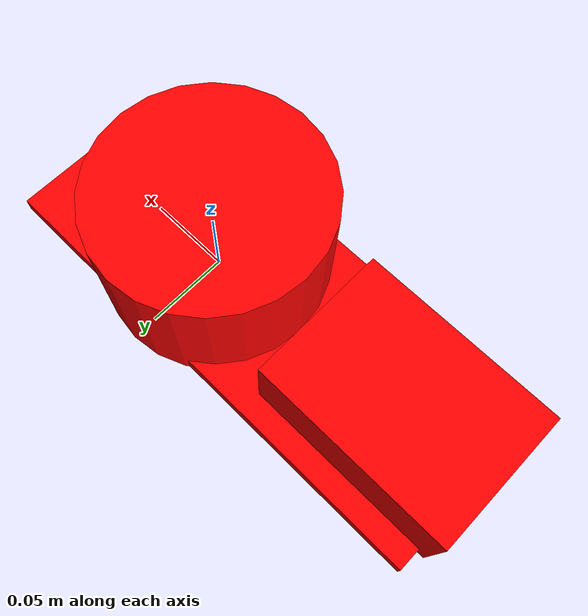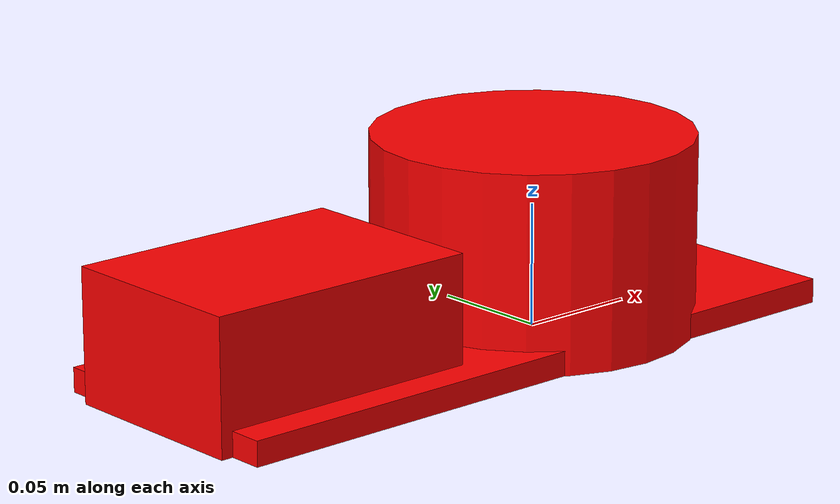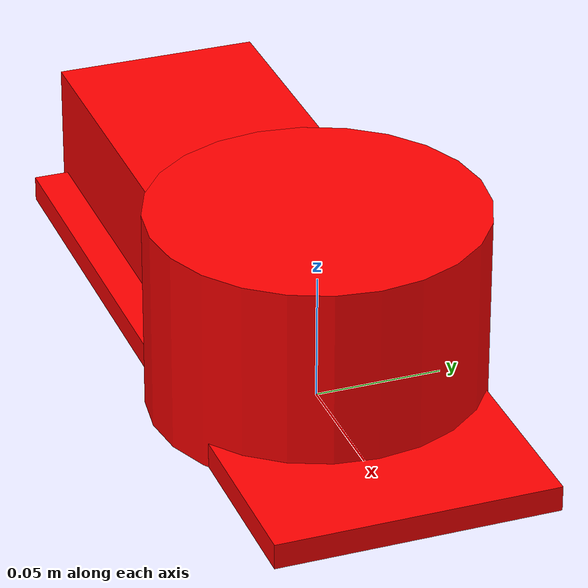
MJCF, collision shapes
<mujoco model="aloha_base">
    <compiler angle="radian" meshdir="assets" autolimits="true" />

    <asset>
        <mesh file="vx300s_1_base.stl" scale="0.001 0.001 0.001" />
    </asset>

    <default>
        <default class="vx300s">
            <site group="4" />
            <default class="visual">
                <geom type="mesh" mass="0" group="2" contype="0" conaffinity="0" />
            </default>
            <default class="collision">
                <geom group="3" type="mesh" condim="6" friction="1 5e-3 5e-4" solref=".01 1" />
            </default>
        </default>
    </default>

    <worldbody>
        <body name="base_link" childclass="vx300s" pos="0 0 0.0" euler="0 0 0">
            <geom quat="1 0 0 1" class="visual" mesh="vx300s_1_base" />
            <geom type="cylinder" size="0.065 0.04" pos="0 0 0.04" class="collision"
                rgba="1 0
            0 1" mass="0.5" />
            <geom type="box" size="0.145 0.055 0.005" pos="-0.04 0 0.005" class="collision"
                rgba="1 0 0 1" mass="0.069034" />
            <geom type="box" size="0.058 0.041 0.027" pos="-0.132 0 0.027" class="collision"
                rgba="1 0 0 1" mass="0.4" />
            <site name="shoulder_mount" pos="0 0 0.079" />
        </body>
    </worldbody>

    <custom>
        <!-- euler 0 0 0 -->
        <numeric name="base_link\body\pos\0\range\y" size='2' data='-0.8 -0.1' />
        <numeric name="base_link\body\pos\1\range\y" size='2' data='-0.5 0.5' />
        <numeric name="base_link\body\pos\2\range\y" size='2' data='-0.3 0.3' />
        <numeric name="base_link\body\euler\2\range\y" size='2'
            data='1.57079632679 -1.57079632679' />

        <!-- euler 1.57079632679 0 0 -->

        <!-- euler -1.57079632679 0 0 -->

        <!-- euler 3.14159265359 0 0 -->
    </custom>

</mujoco>
